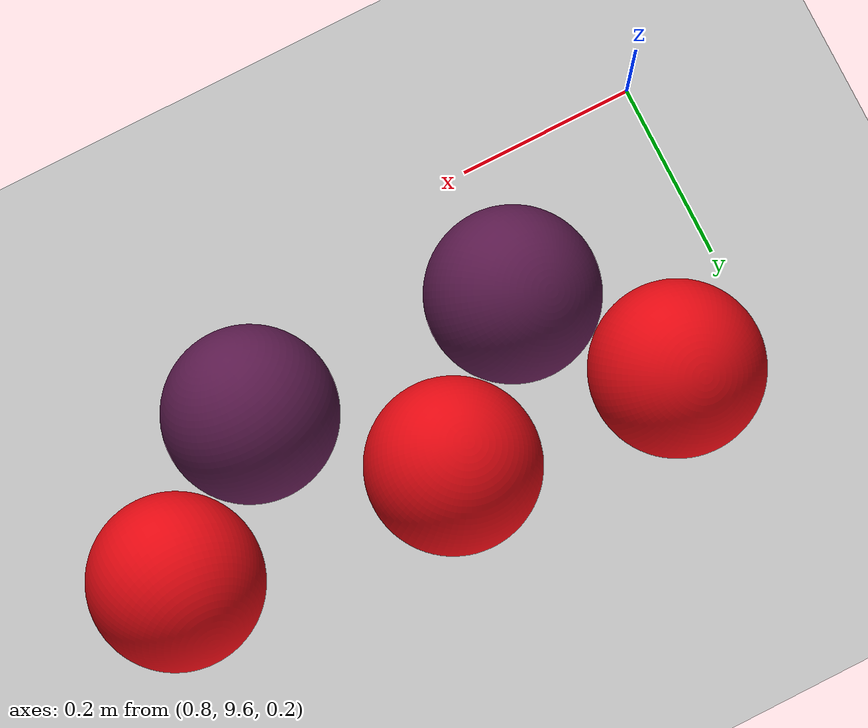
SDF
<sdf version="1.7">
 <world name="default">
  <model name="ground_plane">
   <static>1</static>
   <link name="link">
    <collision name="collision">
     <geometry><plane><normal>0 0 1</normal><size>100 100</size></plane></geometry>
     <surface>
      <contact><collide_bitmask>65535</collide_bitmask></contact>
      <friction><ode><mu>100</mu><mu2>50</mu2></ode></friction>
     </surface>
    </collision>
    <visual name="visual">
     <cast_shadows>0</cast_shadows>
     <geometry><plane><normal>0 0 1</normal><size>100 100</size></plane></geometry>
     <material>
      <script><uri>file://media/materials/scripts/gazebo.material</uri><name>Gazebo/Grey</name></script>
     </material>
    </visual>
   </link>
  </model>
  <model name="ball_empty_0_clone_8_clone">
   <link name="link_1">
    <inertial>
     <mass>1</mass>
     <inertia>
      <ixx>0.166667</ixx>
      <ixy>0</ixy>
      <ixz>0</ixz>
      <iyy>0.166667</iyy>
      <iyz>0</iyz>
      <izz>0.166667</izz>
     </inertia>
    </inertial>
    <visual name="visual">
     <geometry>
      <mesh>
       <uri>/home/entity014/abu2024_ws/src/abu_description/worlds/ball_empty.dae</uri>
       <scale>1 1 1</scale>
      </mesh>
     </geometry>
    </visual>
    <collision name="collision">
     <geometry>
      <mesh>
       <uri>/home/entity014/abu2024_ws/src/abu_description/worlds/ball_empty.dae</uri>
       <scale>1 1 1</scale>
      </mesh>
     </geometry>
     <surface>
      <friction>
       <ode><mu>1</mu><mu2>1</mu2><fdir1>0 0 0</fdir1><slip1>0</slip1><slip2>0</slip2></ode>
       <torsional>
        <coefficient>1</coefficient>
        <patch_radius>0</patch_radius>
        <surface_radius>0</surface_radius>
        <use_patch_radius>1</use_patch_radius>
        <ode><slip>0</slip></ode>
       </torsional>
      </friction>
      <bounce><restitution_coefficient>0</restitution_coefficient><threshold>1e+06</threshold></bounce>
      <contact>
       <collide_without_contact>0</collide_without_contact>
       <collide_without_contact_bitmask>1</collide_without_contact_bitmask>
       <collide_bitmask>1</collide_bitmask>
       <ode>
        <soft_cfm>0</soft_cfm>
        <soft_erp>0.2</soft_erp>
        <kp>1e+13</kp>
        <kd>1</kd>
        <max_vel>0.01</max_vel>
        <min_depth>0</min_depth>
       </ode>
       <bullet>
        <split_impulse>1</split_impulse>
        <split_impulse_penetration_threshold>-0.01</split_impulse_penetration_threshold>
        <soft_cfm>0</soft_cfm>
        <soft_erp>0.2</soft_erp>
        <kp>1e+13</kp>
        <kd>1</kd>
       </bullet>
      </contact>
     </surface>
    </collision>
   </link>
   <static>0</static>
   <pose>1.02582 9.76059 0.322543 -0.207949 -0.393772 -0.254677</pose>
  </model>
  <model name="ball_empty_0_clone_8_clone_0">
   <link name="link_1">
    <inertial>
     <mass>1</mass>
     <inertia>
      <ixx>0.166667</ixx>
      <ixy>0</ixy>
      <ixz>0</ixz>
      <iyy>0.166667</iyy>
      <iyz>0</iyz>
      <izz>0.166667</izz>
     </inertia>
    </inertial>
    <visual name="visual">
     <geometry>
      <mesh>
       <uri>/home/entity014/abu2024_ws/src/abu_description/worlds/ball_empty.dae</uri>
       <scale>1 1 1</scale>
      </mesh>
     </geometry>
    </visual>
    <collision name="collision">
     <geometry>
      <mesh>
       <uri>/home/entity014/abu2024_ws/src/abu_description/worlds/ball_empty.dae</uri>
       <scale>1 1 1</scale>
      </mesh>
     </geometry>
     <surface>
      <friction>
       <ode><mu>1</mu><mu2>1</mu2><fdir1>0 0 0</fdir1><slip1>0</slip1><slip2>0</slip2></ode>
       <torsional>
        <coefficient>1</coefficient>
        <patch_radius>0</patch_radius>
        <surface_radius>0</surface_radius>
        <use_patch_radius>1</use_patch_radius>
        <ode><slip>0</slip></ode>
       </torsional>
      </friction>
      <bounce><restitution_coefficient>0</restitution_coefficient><threshold>1e+06</threshold></bounce>
      <contact>
       <collide_without_contact>0</collide_without_contact>
       <collide_without_contact_bitmask>1</collide_without_contact_bitmask>
       <collide_bitmask>1</collide_bitmask>
       <ode>
        <soft_cfm>0</soft_cfm>
        <soft_erp>0.2</soft_erp>
        <kp>1e+13</kp>
        <kd>1</kd>
        <max_vel>0.01</max_vel>
        <min_depth>0</min_depth>
       </ode>
       <bullet>
        <split_impulse>1</split_impulse>
        <split_impulse_penetration_threshold>-0.01</split_impulse_penetration_threshold>
        <soft_cfm>0</soft_cfm>
        <soft_erp>0.2</soft_erp>
        <kp>1e+13</kp>
        <kd>1</kd>
       </bullet>
      </contact>
     </surface>
    </collision>
   </link>
   <static>0</static>
   <pose>1.33052 9.74864 0.322602 0.411303 0.709968 -0.808359</pose>
  </model>
  <model name="ball_red_5_clone">
   <link name="link_1">
    <inertial>
     <mass>1</mass>
     <inertia>
      <ixx>0.166667</ixx>
      <ixy>0</ixy>
      <ixz>0</ixz>
      <iyy>0.166667</iyy>
      <iyz>0</iyz>
      <izz>0.166667</izz>
     </inertia>
    </inertial>
    <visual name="visual">
     <geometry>
      <mesh><uri>/home/entity014/abu2024_ws/src/abu_description/worlds/ball_red.dae</uri><scale>1 1 1</scale></mesh>
     </geometry>
    </visual>
    <collision name="collision">
     <geometry>
      <mesh><uri>/home/entity014/abu2024_ws/src/abu_description/worlds/ball_red.dae</uri><scale>1 1 1</scale></mesh>
     </geometry>
     <surface>
      <friction>
       <ode><mu>1</mu><mu2>1</mu2><fdir1>0 0 0</fdir1><slip1>0</slip1><slip2>0</slip2></ode>
       <torsional>
        <coefficient>1</coefficient>
        <patch_radius>0</patch_radius>
        <surface_radius>0</surface_radius>
        <use_patch_radius>1</use_patch_radius>
        <ode><slip>0</slip></ode>
       </torsional>
      </friction>
      <bounce><restitution_coefficient>0</restitution_coefficient><threshold>1e+06</threshold></bounce>
      <contact>
       <collide_without_contact>0</collide_without_contact>
       <collide_without_contact_bitmask>1</collide_without_contact_bitmask>
       <collide_bitmask>1</collide_bitmask>
       <ode>
        <soft_cfm>0</soft_cfm>
        <soft_erp>0.2</soft_erp>
        <kp>1e+13</kp>
        <kd>1</kd>
        <max_vel>0.01</max_vel>
        <min_depth>0</min_depth>
       </ode>
       <bullet>
        <split_impulse>1</split_impulse>
        <split_impulse_penetration_threshold>-0.01</split_impulse_penetration_threshold>
        <soft_cfm>0</soft_cfm>
        <soft_erp>0.2</soft_erp>
        <kp>1e+13</kp>
        <kd>1</kd>
       </bullet>
      </contact>
     </surface>
    </collision>
   </link>
   <static>0</static>
   <pose>1.16497 9.89467 0.322549 0.086204 -0.187126 -0.18036</pose>
  </model>
  <model name="ball_red_5_clone_1">
   <link name="link_1">
    <inertial>
     <mass>1</mass>
     <inertia>
      <ixx>0.166667</ixx>
      <ixy>0</ixy>
      <ixz>0</ixz>
      <iyy>0.166667</iyy>
      <iyz>0</iyz>
      <izz>0.166667</izz>
     </inertia>
    </inertial>
    <visual name="visual">
     <geometry>
      <mesh><uri>/home/entity014/abu2024_ws/src/abu_description/worlds/ball_red.dae</uri><scale>1 1 1</scale></mesh>
     </geometry>
    </visual>
    <collision name="collision">
     <geometry>
      <mesh><uri>/home/entity014/abu2024_ws/src/abu_description/worlds/ball_red.dae</uri><scale>1 1 1</scale></mesh>
     </geometry>
     <surface>
      <friction>
       <ode><mu>1</mu><mu2>1</mu2><fdir1>0 0 0</fdir1><slip1>0</slip1><slip2>0</slip2></ode>
       <torsional>
        <coefficient>1</coefficient>
        <patch_radius>0</patch_radius>
        <surface_radius>0</surface_radius>
        <use_patch_radius>1</use_patch_radius>
        <ode><slip>0</slip></ode>
       </torsional>
      </friction>
      <bounce><restitution_coefficient>0</restitution_coefficient><threshold>1e+06</threshold></bounce>
      <contact>
       <collide_without_contact>0</collide_without_contact>
       <collide_without_contact_bitmask>1</collide_without_contact_bitmask>
       <collide_bitmask>1</collide_bitmask>
       <ode>
        <soft_cfm>0</soft_cfm>
        <soft_erp>0.2</soft_erp>
        <kp>1e+13</kp>
        <kd>1</kd>
        <max_vel>0.01</max_vel>
        <min_depth>0</min_depth>
       </ode>
       <bullet>
        <split_impulse>1</split_impulse>
        <split_impulse_penetration_threshold>-0.01</split_impulse_penetration_threshold>
        <soft_cfm>0</soft_cfm>
        <soft_erp>0.2</soft_erp>
        <kp>1e+13</kp>
        <kd>1</kd>
       </bullet>
      </contact>
     </surface>
    </collision>
   </link>
   <static>0</static>
   <pose>0.907686 9.91001 0.322546 -0.352674 -0.083317 0.135015</pose>
  </model>
  <model name="ball_red_5_clone_2">
   <link name="link_1">
    <inertial>
     <mass>1</mass>
     <inertia>
      <ixx>0.166667</ixx>
      <ixy>0</ixy>
      <ixz>0</ixz>
      <iyy>0.166667</iyy>
      <iyz>0</iyz>
      <izz>0.166667</izz>
     </inertia>
    </inertial>
    <visual name="visual">
     <geometry>
      <mesh><uri>/home/entity014/abu2024_ws/src/abu_description/worlds/ball_red.dae</uri><scale>1 1 1</scale></mesh>
     </geometry>
    </visual>
    <collision name="collision">
     <geometry>
      <mesh><uri>/home/entity014/abu2024_ws/src/abu_description/worlds/ball_red.dae</uri><scale>1 1 1</scale></mesh>
     </geometry>
     <surface>
      <friction>
       <ode><mu>1</mu><mu2>1</mu2><fdir1>0 0 0</fdir1><slip1>0</slip1><slip2>0</slip2></ode>
       <torsional>
        <coefficient>1</coefficient>
        <patch_radius>0</patch_radius>
        <surface_radius>0</surface_radius>
        <use_patch_radius>1</use_patch_radius>
        <ode><slip>0</slip></ode>
       </torsional>
      </friction>
      <bounce><restitution_coefficient>0</restitution_coefficient><threshold>1e+06</threshold></bounce>
      <contact>
       <collide_without_contact>0</collide_without_contact>
       <collide_without_contact_bitmask>1</collide_without_contact_bitmask>
       <collide_bitmask>1</collide_bitmask>
       <ode>
        <soft_cfm>0</soft_cfm>
        <soft_erp>0.2</soft_erp>
        <kp>1e+13</kp>
        <kd>1</kd>
        <max_vel>0.01</max_vel>
        <min_depth>0</min_depth>
       </ode>
       <bullet>
        <split_impulse>1</split_impulse>
        <split_impulse_penetration_threshold>-0.01</split_impulse_penetration_threshold>
        <soft_cfm>0</soft_cfm>
        <soft_erp>0.2</soft_erp>
        <kp>1e+13</kp>
        <kd>1</kd>
       </bullet>
      </contact>
     </surface>
    </collision>
   </link>
   <static>0</static>
   <pose>1.47931 9.87135 0.322604 2.60469 0.957375 1.01823</pose>
  </model>
 </world>
</sdf>
